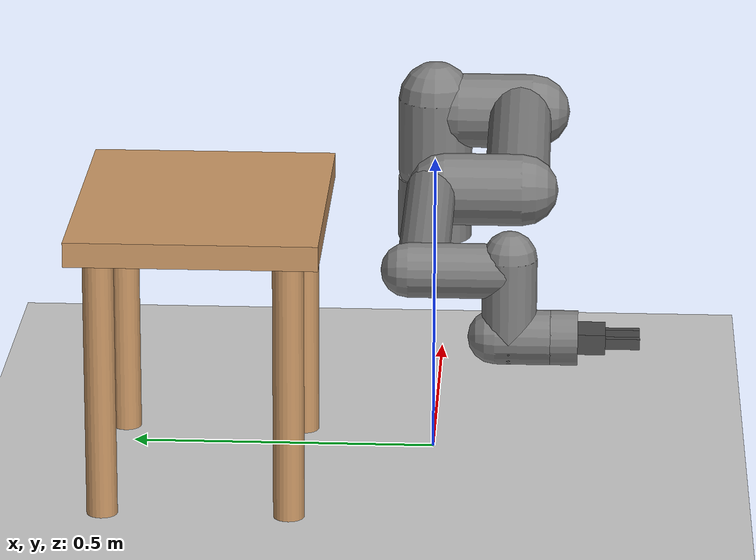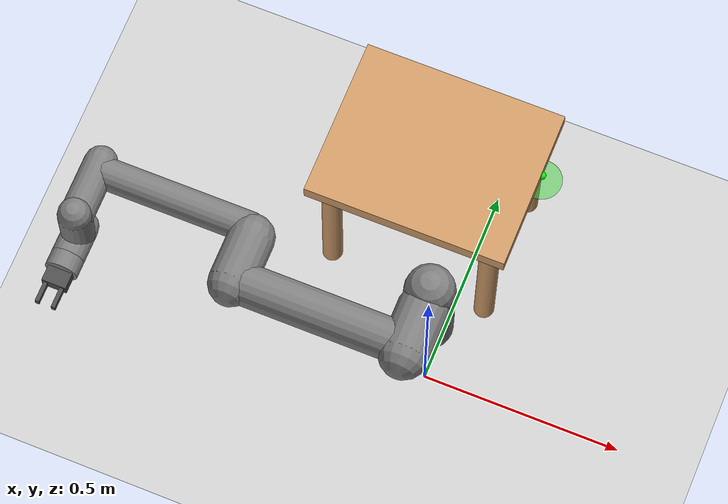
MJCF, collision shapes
<mujoco model="ur5e_pick_place">
  <compiler angle="radian" meshdir="ur5e/assets" autolimits="true"/>

  <option integrator="implicitfast" timestep="0.002"/>

  <!-- Contact parameters for realistic physics -->
  <size njmax="1000" nconmax="500" nstack="1000000"/>

<contact>
    <pair geom1="table_top" geom2="left_finger_geom" solref="0.02 1" solimp="0.9 0.95 0.001"/>
    <pair geom1="table_top" geom2="right_finger_geom" solref="0.02 1" solimp="0.9 0.95 0.001"/>

    <pair geom1="cube_geom" geom2="left_finger_geom" solref="0.02 1" solimp="0.9 0.95 0.005" margin="0.001" friction="1 0.5 0.005 0.0001 0.0001"/>
    <pair geom1="cube_geom" geom2="right_finger_geom" solref="0.02 1" solimp="0.9 0.95 0.005" margin="0.001" friction="1 0.5 0.005 0.0001 0.0001"/>

    <pair geom1="cube_geom" geom2="table_top" solref="0.02 1" solimp="0.9 0.95 0.001"/>
  </contact>

  <default>
    <default class="ur5e">
      <material specular="0.5" shininess="0.25"/>
      <joint axis="0 1 0" range="-6.28319 6.28319" armature="0.1"/>
      <general gaintype="fixed" biastype="affine" ctrlrange="-6.2831 6.2831" gainprm="2000" biasprm="0 -2000 -400"
        forcerange="-150 150"/>
      <default class="size3">
        <default class="size3_limited">
          <joint range="-3.1415 3.1415"/>
          <general ctrlrange="-3.1415 3.1415"/>
        </default>
      </default>
      <default class="size1">
        <general gainprm="500" biasprm="0 -500 -100" forcerange="-28 28"/>
      </default>
      <default class="visual">
        <geom type="mesh" contype="0" conaffinity="0" group="2"/>
      </default>
      <default class="collision">
        <geom type="capsule" group="3" contype="1" conaffinity="1" solref="0.002 1" solimp="0.9 0.95 0.001"/>
        <default class="eef_collision">
          <geom type="cylinder" contype="1" conaffinity="1" solref="0.002 1" solimp="0.9 0.95 0.001"/>
        </default>
      </default>
      <site size="0.001" rgba="0.5 0.5 0.5 0.3" group="4"/>
    </default>
    <default class="gripper">
      <!-- Range 0.018: fingers move from ±0.02 to ±0.002 -->
      <!-- Open gap = 0.04 - 2*0.005 = 0.03m (cube 0.026m fits with 4mm clearance) -->
      <!-- Closed gap = 0.004 - 2*0.005 = -0.006m (fingers overlap/grip) -->
      <joint type="slide" axis="1 0 0" limited="true" range="0 0.018" damping="20" armature="0.002"/>
      <geom type="box" size="0.005 0.008 0.025" rgba="0.5 0.5 0.5 1" friction="5 0.3 0.1"
            contype="1" conaffinity="1" solref="0.002 1" solimp="0.9 0.95 0.001"/>
    </default>
  </default>

  <asset>
    <material class="ur5e" name="black" rgba="0.033 0.033 0.033 1"/>
    <material class="ur5e" name="jointgray" rgba="0.278 0.278 0.278 1"/>
    <material class="ur5e" name="linkgray" rgba="0.82 0.82 0.82 1"/>
    <material class="ur5e" name="urblue" rgba="0.49 0.678 0.8 1"/>
    <material name="table_mat" rgba="0.8 0.6 0.4 1" specular="0.1" shininess="0.1"/>
    <material name="cube_mat" rgba="0.8 0.2 0.2 1" specular="0.5" shininess="0.3"/>
    <material name="target_mat" rgba="0.2 0.8 0.2 0.5" specular="0.1" shininess="0.1"/>
    <material name="gripper_mat" rgba="0.3 0.3 0.3 1" specular="0.5" shininess="0.3"/>

    <mesh file="base_0.obj"/>
    <mesh file="base_1.obj"/>
    <mesh file="shoulder_0.obj"/>
    <mesh file="shoulder_1.obj"/>
    <mesh file="shoulder_2.obj"/>
    <mesh file="upperarm_0.obj"/>
    <mesh file="upperarm_1.obj"/>
    <mesh file="upperarm_2.obj"/>
    <mesh file="upperarm_3.obj"/>
    <mesh file="forearm_0.obj"/>
    <mesh file="forearm_1.obj"/>
    <mesh file="forearm_2.obj"/>
    <mesh file="forearm_3.obj"/>
    <mesh file="wrist1_0.obj"/>
    <mesh file="wrist1_1.obj"/>
    <mesh file="wrist1_2.obj"/>
    <mesh file="wrist2_0.obj"/>
    <mesh file="wrist2_1.obj"/>
    <mesh file="wrist2_2.obj"/>
    <mesh file="wrist3.obj"/>

    <texture type="2d" name="grid_texture" builtin="checker" width="512" height="512" rgb1="0.9 0.9 0.9" rgb2="0.7 0.7 0.7"/>
    <material name="floor_mat" texture="grid_texture" texrepeat="10 10" specular="0.1" shininess="0.1"/>
  </asset>

  <worldbody>
    <!-- Lighting -->
    <light name="top_light" pos="0 0 2" dir="0 0 -1" diffuse="0.8 0.8 0.8" specular="0.3 0.3 0.3"/>
    <light name="spotlight" mode="targetbodycom" target="wrist_2_link" pos="0 -1 2"/>

    <!-- Floor -->
    <geom name="floor" type="plane" size="2 2 0.1" pos="0 0 0" material="floor_mat"
          contype="1" conaffinity="1" solref="0.002 1" solimp="0.9 0.95 0.001" friction="1 0.05 0.01"/>

    <!-- Table - positioned for robot to reach -->
    <!-- Robot EE at Z=0.493. Table top should be at Z~0.47 for cube Z~0.49 -->
    <body name="table" pos="-0.13 0.37 0">
      <geom name="table_top" type="box" size="0.25 0.2 0.02" pos="0 0 0.45" material="table_mat"
            contype="1" conaffinity="1" solref="0.002 1" solimp="0.9 0.95 0.001" friction="1 0.05 0.01"/>
      <geom name="table_leg1" type="cylinder" size="0.025 0.225" pos="0.2 0.15 0.225" material="table_mat"
            contype="1" conaffinity="1" solref="0.002 1" solimp="0.9 0.95 0.001"/>
      <geom name="table_leg2" type="cylinder" size="0.025 0.225" pos="0.2 -0.15 0.225" material="table_mat"
            contype="1" conaffinity="1" solref="0.002 1" solimp="0.9 0.95 0.001"/>
      <geom name="table_leg3" type="cylinder" size="0.025 0.225" pos="-0.2 0.15 0.225" material="table_mat"
            contype="1" conaffinity="1" solref="0.002 1" solimp="0.9 0.95 0.001"/>
      <geom name="table_leg4" type="cylinder" size="0.025 0.225" pos="-0.2 -0.15 0.225" material="table_mat"
            contype="1" conaffinity="1" solref="0.002 1" solimp="0.9 0.95 0.001"/>
    </body>

    <!-- Target area (visual only) - in robot's reachable area -->
    <body name="target" pos="0.12 0.42 0.42">
      <geom name="target_area" type="cylinder" size="0.05 0.001" material="target_mat" contype="0" conaffinity="0"/>
      <site name="target_site" pos="0 0 0.025" size="0.01" rgba="0 1 0 1"/>
    </body>

    <!-- Cube object - spawns in robot's reachable workspace -->
    <!-- Cube size: 0.026m (half-size 0.013m) fits in gripper opening 0.03m with 4mm clearance -->
    <body name="cube" pos="-0.05 0.42 0.45">
      <freejoint name="cube_joint"/>
      <geom name="cube_geom" type="box" size="0.013 0.013 0.013" mass="0.05" material="cube_mat"
            friction="2 0.1 0.02" contype="1" conaffinity="1" solref="0.002 1" solimp="0.9 0.95 0.001"/>
      <site name="cube_site" pos="0 0 0" size="0.008" rgba="1 0 0 1"/>
    </body>

    <!-- UR5e Robot -->
    <body name="base" pos="0 0 0.42" quat="0 0 0 -1" childclass="ur5e">
      <inertial mass="4.0" pos="0 0 0" diaginertia="0.00443333156 0.00443333156 0.0072"/>
      <geom mesh="base_0" material="black" class="visual"/>
      <geom mesh="base_1" material="jointgray" class="visual"/>
      <geom type="cylinder" size="0.06 0.05" pos="0 0 0" class="collision"/>

      <body name="shoulder_link" pos="0 0 0.163">
        <inertial mass="3.7" pos="0 0 0" diaginertia="0.0102675 0.0102675 0.00666"/>
        <joint name="shoulder_pan_joint" class="size3" axis="0 0 1"/>
        <geom mesh="shoulder_0" material="urblue" class="visual"/>
        <geom mesh="shoulder_1" material="black" class="visual"/>
        <geom mesh="shoulder_2" material="jointgray" class="visual"/>
        <geom class="collision" size="0.06 0.06" pos="0 0 -0.04"/>

        <body name="upper_arm_link" pos="0 0.138 0" quat="1 0 1 0">
          <inertial mass="8.393" pos="0 0 0.2125" diaginertia="0.133886 0.133886 0.0151074"/>
          <joint name="shoulder_lift_joint" class="size3"/>
          <geom mesh="upperarm_0" material="linkgray" class="visual"/>
          <geom mesh="upperarm_1" material="black" class="visual"/>
          <geom mesh="upperarm_2" material="jointgray" class="visual"/>
          <geom mesh="upperarm_3" material="urblue" class="visual"/>
          <geom class="collision" pos="0 -0.04 0" quat="1 1 0 0" size="0.06 0.06"/>
          <geom class="collision" size="0.05 0.2" pos="0 0 0.2"/>

          <body name="forearm_link" pos="0 -0.131 0.425">
            <inertial mass="2.275" pos="0 0 0.196" diaginertia="0.0311796 0.0311796 0.004095"/>
            <joint name="elbow_joint" class="size3_limited"/>
            <geom mesh="forearm_0" material="urblue" class="visual"/>
            <geom mesh="forearm_1" material="linkgray" class="visual"/>
            <geom mesh="forearm_2" material="black" class="visual"/>
            <geom mesh="forearm_3" material="jointgray" class="visual"/>
            <geom class="collision" pos="0 0.08 0" quat="1 1 0 0" size="0.055 0.06"/>
            <geom class="collision" size="0.038 0.19" pos="0 0 0.2"/>

            <body name="wrist_1_link" pos="0 0 0.392" quat="1 0 1 0">
              <inertial mass="1.219" pos="0 0.127 0" diaginertia="0.0025599 0.0025599 0.0021942"/>
              <joint name="wrist_1_joint" class="size1"/>
              <geom mesh="wrist1_0" material="black" class="visual"/>
              <geom mesh="wrist1_1" material="urblue" class="visual"/>
              <geom mesh="wrist1_2" material="jointgray" class="visual"/>
              <geom class="collision" pos="0 0.05 0" quat="1 1 0 0" size="0.04 0.07"/>

              <body name="wrist_2_link" pos="0 0.127 0">
                <inertial mass="1.219" pos="0 0 0.1" diaginertia="0.0025599 0.0025599 0.0021942"/>
                <joint name="wrist_2_joint" axis="0 0 1" class="size1"/>
                <geom mesh="wrist2_0" material="black" class="visual"/>
                <geom mesh="wrist2_1" material="urblue" class="visual"/>
                <geom mesh="wrist2_2" material="jointgray" class="visual"/>
                <geom class="collision" size="0.04 0.06" pos="0 0 0.04"/>
                <geom class="collision" pos="0 0.02 0.1" quat="1 1 0 0" size="0.04 0.04"/>

                <body name="wrist_3_link" pos="0 0 0.1">
                  <inertial mass="0.1889" pos="0 0.0771683 0" quat="1 0 0 1"
                    diaginertia="0.000132134 9.90863e-05 9.90863e-05"/>
                  <joint name="wrist_3_joint" class="size1"/>
                  <geom material="linkgray" mesh="wrist3" class="visual"/>
                  <geom class="eef_collision" pos="0 0.08 0" quat="1 1 0 0" size="0.04 0.02"/>

                  <!-- End effector site -->
                  <site name="ee_site" pos="0 0.1 0" quat="-1 1 0 0" size="0.01" rgba="0 0 1 1"/>

                  <!-- Simple parallel gripper -->
                  <body name="gripper_base" pos="0 0.1 0" quat="-1 1 0 0">
                    <inertial mass="0.5" pos="0 0 0.03" diaginertia="0.001 0.001 0.001"/>
                    <geom type="box" size="0.03 0.015 0.02" pos="0 0 0.02" material="gripper_mat"
                          contype="1" conaffinity="1" solref="0.002 1" solimp="0.9 0.95 0.001"/>

                    <!-- Left finger -->
                    <!-- Open: X = -0.02, Closed: X = -0.02 + 0.018 = -0.002 -->
                    <!-- Geom thickness 0.005, inner edge when closed: -0.002+0.005 = 0.003 -->
                    <body name="left_finger" pos="-0.02 0 0.04">
                      <inertial mass="0.1" pos="0 0 0.025" diaginertia="0.0001 0.0001 0.0001"/>
                      <joint name="finger_left_joint" class="gripper"/>
                      <geom name="left_finger_geom" type="box" size="0.005 0.008 0.025" pos="0 0 0.025"
                            material="gripper_mat" friction="5 0.3 0.1"
                            contype="1" conaffinity="1" solref="0.002 1" solimp="0.9 0.95 0.001"/>
                      <site name="left_finger_site" pos="0 0 0.05" size="0.003" rgba="1 1 0 1"/>
                    </body>

                    <!-- Right finger -->
                    <!-- Open: X = 0.02, Closed: X = 0.02 - 0.018 = 0.002 -->
                    <!-- Geom thickness 0.005, inner edge when closed: 0.002-0.005 = -0.003 -->
                    <body name="right_finger" pos="0.02 0 0.04">
                      <inertial mass="0.1" pos="0 0 0.025" diaginertia="0.0001 0.0001 0.0001"/>
                      <joint name="finger_right_joint" class="gripper" axis="-1 0 0"/>
                      <geom name="right_finger_geom" type="box" size="0.005 0.008 0.025" pos="0 0 0.025"
                            material="gripper_mat" friction="5 0.3 0.1"
                            contype="1" conaffinity="1" solref="0.002 1" solimp="0.9 0.95 0.001"/>
                      <site name="right_finger_site" pos="0 0 0.05" size="0.003" rgba="1 1 0 1"/>
                    </body>

                    <!-- Gripper center site at fingertip level for grasping reference -->
                    <site name="gripper_center" pos="0 0 0.065" size="0.008" rgba="0 1 1 1"/>
                  </body>
                </body>
              </body>
            </body>
          </body>
        </body>
      </body>
    </body>
  </worldbody>

  <actuator>
    <!-- Arm actuators -->
    <general class="size3" name="shoulder_pan" joint="shoulder_pan_joint"/>
    <general class="size3" name="shoulder_lift" joint="shoulder_lift_joint"/>
    <general class="size3_limited" name="elbow" joint="elbow_joint"/>
    <general class="size1" name="wrist_1" joint="wrist_1_joint"/>
    <general class="size1" name="wrist_2" joint="wrist_2_joint"/>
    <general class="size1" name="wrist_3" joint="wrist_3_joint"/>
    <!-- Gripper actuators -->
    <position name="gripper_left" joint="finger_left_joint" kp="200" ctrlrange="0 0.018"/>
    <position name="gripper_right" joint="finger_right_joint" kp="200" ctrlrange="0 0.018"/>
  </actuator>

  <sensor>
    <!-- Joint position sensors -->
    <jointpos name="shoulder_pan_pos" joint="shoulder_pan_joint"/>
    <jointpos name="shoulder_lift_pos" joint="shoulder_lift_joint"/>
    <jointpos name="elbow_pos" joint="elbow_joint"/>
    <jointpos name="wrist_1_pos" joint="wrist_1_joint"/>
    <jointpos name="wrist_2_pos" joint="wrist_2_joint"/>
    <jointpos name="wrist_3_pos" joint="wrist_3_joint"/>
    <!-- Joint velocity sensors -->
    <jointvel name="shoulder_pan_vel" joint="shoulder_pan_joint"/>
    <jointvel name="shoulder_lift_vel" joint="shoulder_lift_joint"/>
    <jointvel name="elbow_vel" joint="elbow_joint"/>
    <jointvel name="wrist_1_vel" joint="wrist_1_joint"/>
    <jointvel name="wrist_2_vel" joint="wrist_2_joint"/>
    <jointvel name="wrist_3_vel" joint="wrist_3_joint"/>
    <!-- Gripper sensors -->
    <jointpos name="gripper_left_pos" joint="finger_left_joint"/>
    <jointpos name="gripper_right_pos" joint="finger_right_joint"/>
    <!-- Touch sensors -->
    <touch name="left_finger_touch" site="left_finger_site"/>
    <touch name="right_finger_touch" site="right_finger_site"/>
  </sensor>

  <keyframe>
    <key name="home" qpos="-1.5708 -1.5708 1.5708 -1.5708 -1.5708 0 0 0 0.4 -0.2 0.475 1 0 0 0"
         ctrl="-1.5708 -1.5708 1.5708 -1.5708 -1.5708 0 0 0"/>
  </keyframe>
</mujoco>
